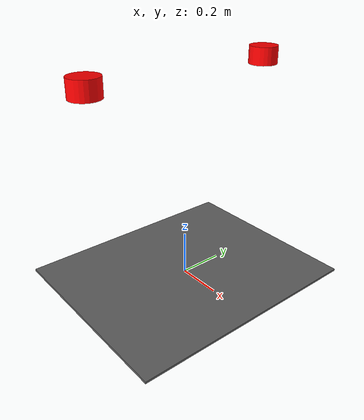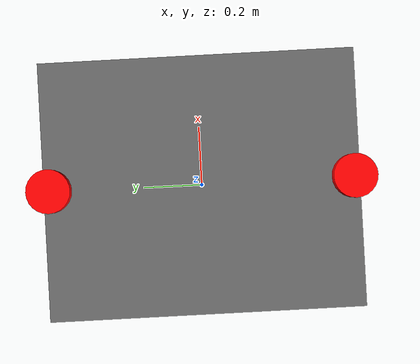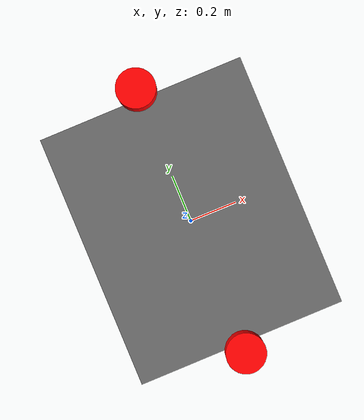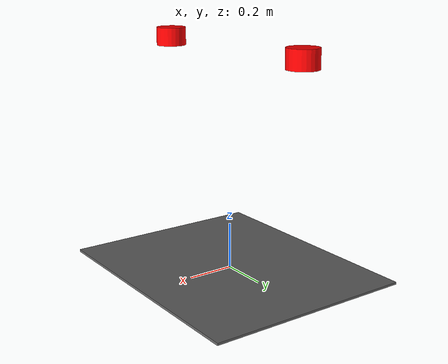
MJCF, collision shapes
<mujoco model="aloha_base_upside_down_bimanual_v1">
    <compiler angle="radian" meshdir="assets" autolimits="true" />

    <asset>
        <mesh file="vx300s_1_base.stl" scale="0.001 0.001 0.001" />
    </asset>

    <default>
        <default class="vx300s">
            <site group="4" />
            <default class="visual">
                <geom type="mesh" mass="0" group="2" contype="0" conaffinity="0" />
            </default>
            <default class="collision">
                <geom group="3" type="mesh" condim="6" friction="1 5e-3 5e-4" solref=".01 1" />
            </default>
        </default>
    </default>

    <worldbody>
        <body name="base_link" childclass="vx300s" pos="0 0 0.0" euler="0 0 0">
            <geom type="box" size="0.45 0.55 0.005" pos="0 0 0.005" class="collision"
                rgba="0.4 0.4 0.4 1" mass="2.0" />
            <body name="left_arm_holder" pos="0 0.45 1.0" euler="3.141592653589793 0 0">
                <geom name="left_base_collision" type="cylinder" size="0.065 0.04"
                    pos="0 0 0.04" class="collision" rgba="1 0 0 1" mass="0.5" />
                <geom name="left_base_visual" quat="1 0 0 1" class="visual" mesh="vx300s_1_base"
                    pos="0 0 0" />
                <site name="left:shoulder_mount" pos="0 0 0.079" />
            </body>
            <body name="right_arm_holder" pos="0 -0.45 1.0" euler="3.141592653589793 0 0">
                <geom name="right_base_collision" type="cylinder" size="0.065 0.04"
                    pos="0 0 0.04" class="collision" rgba="1 0 0 1" mass="0.5" />
                <geom name="right_base_visual" quat="1 0 0 1" class="visual" mesh="vx300s_1_base"
                    pos="0 0 0" />
                <site name="right:shoulder_mount" pos="0 0 0.079" />
            </body>
        </body>
    </worldbody>

    <custom>
        <numeric name="base_link\body\pos\0\range\y" size='2' data='-0.8 -0.1' />
        <numeric name="base_link\body\pos\1\range\y" size='2' data='-0.0 0.0' />
        <numeric name="base_link\body\pos\2\range\y" size='2' data='-0.1 0.1' />

        <!-- symmetric arm mount x: both arms shifted by same x offset -->
        <numeric name="left_arm_holder\body\pos\0\range\y" size='2' data='-0.80 0.80' />
        <text name="symmetric_arm_x"
            data="left_arm_holder\body\pos\0\range\y;right_arm_holder\body\pos\0\range\y" />

        <!-- symmetric arm mount z: both arms hang at same height -->
        <numeric name="left_arm_holder\body\pos\2\range\y" size='2' data='0.40 1.60' />
        <text name="symmetric_arm_z"
            data="left_arm_holder\body\pos\2\range\y;right_arm_holder\body\pos\2\range\y" />

        <!-- V0 variations + symmetric arm spacing in y: half-distance varies in
             [0.20, 0.45] so total spacing between arms is in [0.40, 0.90] meters -->
        <numeric name="left_arm_holder\body\pos\1\range\y" size='2' data='0.20 0.90' />
        <text name="symmetric_arm_spacing"
            data="left_arm_holder\body\pos\1\range\y;right_arm_holder\body\pos\1\range\-y" />
    </custom>

</mujoco>
